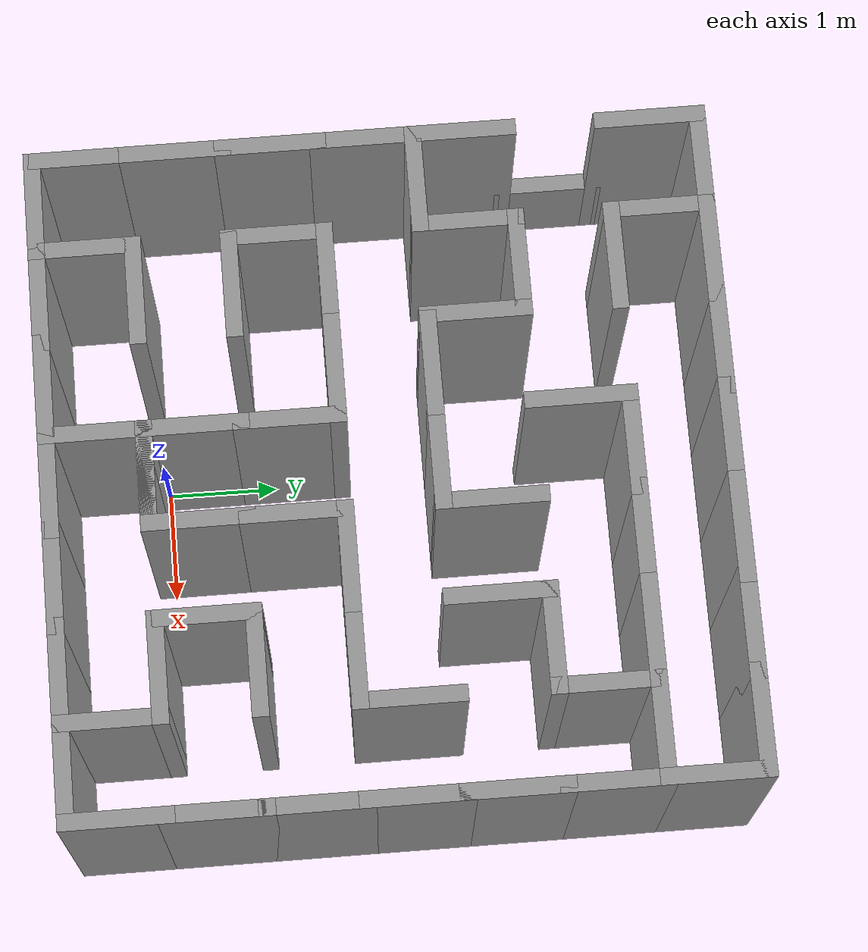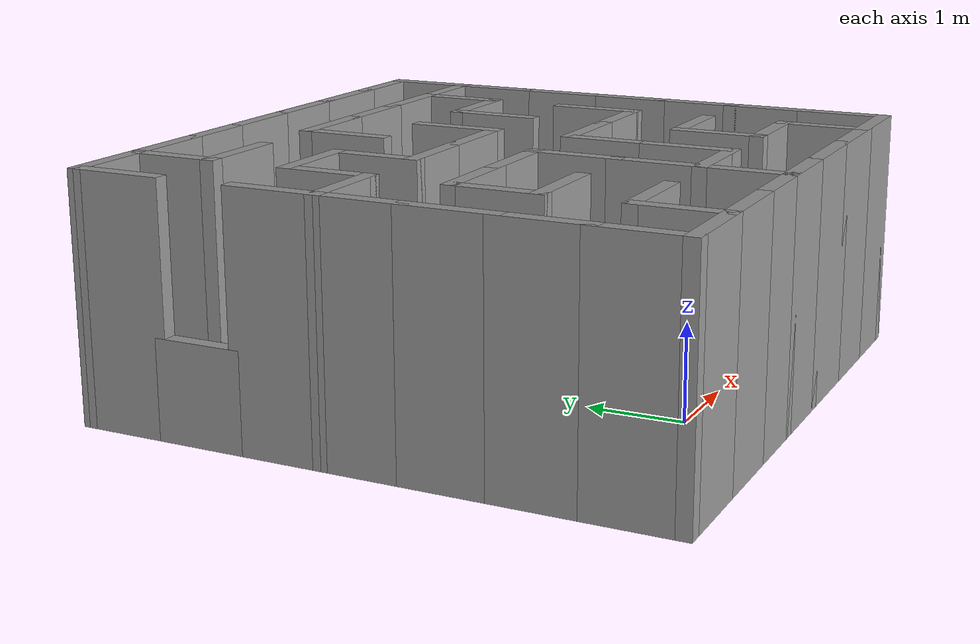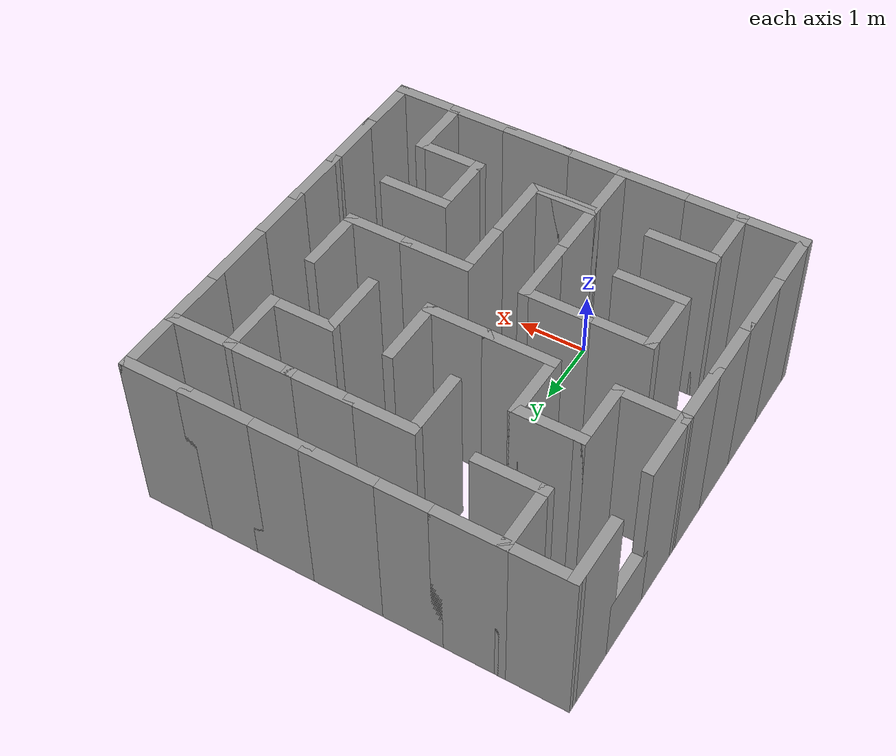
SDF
<?xml version='1.0'?>
<sdf version='1.7'>
  <model name='test_maze_v1'>
    <pose>0.480775 2.04426 0 0 -0 0</pose>
    <link name='Wall_235'>
      <collision name='Wall_235_Collision'>
        <geometry>
          <box>
            <size>1 0.15 2.5</size>
          </box>
        </geometry>
        <pose>0 0 1.25 0 -0 0</pose>
      </collision>
      <visual name='Wall_235_Visual'>
        <pose>0 0 1.25 0 -0 0</pose>
        <geometry>
          <box>
            <size>1 0.15 2.5</size>
          </box>
        </geometry>
        <material>
          <script>
            <uri>file://media/materials/scripts/gazebo.material</uri>
            <name>Gazebo/Grey</name>
          </script>
          <ambient>1 1 1 1</ambient>
        </material>
        <meta>
          <layer>0</layer>
        </meta>
      </visual>
      <pose>1e-05 -2.125 0 0 -0 0</pose>
    </link>
    <link name='Wall_236'>
      <collision name='Wall_236_Collision'>
        <geometry>
          <box>
            <size>1 0.15 2.5</size>
          </box>
        </geometry>
        <pose>0 0 1.25 0 -0 0</pose>
      </collision>
      <visual name='Wall_236_Visual'>
        <pose>0 0 1.25 0 -0 0</pose>
        <geometry>
          <box>
            <size>1 0.15 2.5</size>
          </box>
        </geometry>
        <material>
          <script>
            <uri>file://media/materials/scripts/gazebo.material</uri>
            <name>Gazebo/Grey</name>
          </script>
          <ambient>1 1 1 1</ambient>
        </material>
        <meta>
          <layer>0</layer>
        </meta>
      </visual>
      <pose>0.425009 -1.7 0 0 -0 1.5708</pose>
    </link>
    <link name='Wall_237'>
      <collision name='Wall_237_Collision'>
        <geometry>
          <box>
            <size>1 0.15 2.5</size>
          </box>
        </geometry>
        <pose>0 0 1.25 0 -0 0</pose>
      </collision>
      <visual name='Wall_237_Visual'>
        <pose>0 0 1.25 0 -0 0</pose>
        <geometry>
          <box>
            <size>1 0.15 2.5</size>
          </box>
        </geometry>
        <material>
          <script>
            <uri>file://media/materials/scripts/gazebo.material</uri>
            <name>Gazebo/Grey</name>
          </script>
          <ambient>1 1 1 1</ambient>
        </material>
        <meta>
          <layer>0</layer>
        </meta>
      </visual>
      <pose>0.425009 -0.85 0 0 -0 1.5708</pose>
    </link>
    <link name='Wall_238'>
      <collision name='Wall_238_Collision'>
        <geometry>
          <box>
            <size>1 0.15 2.5</size>
          </box>
        </geometry>
        <pose>0 0 1.25 0 -0 0</pose>
      </collision>
      <visual name='Wall_238_Visual'>
        <pose>0 0 1.25 0 -0 0</pose>
        <geometry>
          <box>
            <size>1 0.15 2.5</size>
          </box>
        </geometry>
        <material>
          <script>
            <uri>file://media/materials/scripts/gazebo.material</uri>
            <name>Gazebo/Grey</name>
          </script>
          <ambient>1 1 1 1</ambient>
        </material>
        <meta>
          <layer>0</layer>
        </meta>
      </visual>
      <pose>0.85001 -0.425 0 0 -0 0</pose>
    </link>
    <link name='Wall_239'>
      <collision name='Wall_239_Collision'>
        <geometry>
          <box>
            <size>1 0.15 2.5</size>
          </box>
        </geometry>
        <pose>0 0 1.25 0 -0 0</pose>
      </collision>
      <visual name='Wall_239_Visual'>
        <pose>0 0 1.25 0 -0 0</pose>
        <geometry>
          <box>
            <size>1 0.15 2.5</size>
          </box>
        </geometry>
        <material>
          <script>
            <uri>file://media/materials/scripts/gazebo.material</uri>
            <name>Gazebo/Grey</name>
          </script>
          <ambient>1 1 1 1</ambient>
        </material>
        <meta>
          <layer>0</layer>
        </meta>
      </visual>
      <pose>1.70001 -0.425 0 0 -0 0</pose>
    </link>
    <link name='Wall_240'>
      <collision name='Wall_240_Collision'>
        <geometry>
          <box>
            <size>1 0.15 2.5</size>
          </box>
        </geometry>
        <pose>0 0 1.25 0 -0 0</pose>
      </collision>
      <visual name='Wall_240_Visual'>
        <pose>0 0 1.25 0 -0 0</pose>
        <geometry>
          <box>
            <size>1 0.15 2.5</size>
          </box>
        </geometry>
        <material>
          <script>
            <uri>file://media/materials/scripts/gazebo.material</uri>
            <name>Gazebo/Grey</name>
          </script>
          <ambient>1 1 1 1</ambient>
        </material>
        <meta>
          <layer>0</layer>
        </meta>
      </visual>
      <pose>2.12501 0 0 0 -0 1.5708</pose>
    </link>
    <link name='Wall_242'>
      <collision name='Wall_242_Collision'>
        <geometry>
          <box>
            <size>1 0.15 2.5</size>
          </box>
        </geometry>
        <pose>0 0 1.25 0 -0 0</pose>
      </collision>
      <visual name='Wall_242_Visual'>
        <pose>0 0 1.25 0 -0 0</pose>
        <geometry>
          <box>
            <size>1 0.15 2.5</size>
          </box>
        </geometry>
        <material>
          <script>
            <uri>file://media/materials/scripts/gazebo.material</uri>
            <name>Gazebo/Grey</name>
          </script>
          <ambient>1 1 1 1</ambient>
        </material>
        <meta>
          <layer>0</layer>
        </meta>
      </visual>
      <pose>1e-05 -2.125 0 0 -0 3.14159</pose>
    </link>
    <link name='Wall_243'>
      <collision name='Wall_243_Collision'>
        <geometry>
          <box>
            <size>1 0.15 2.5</size>
          </box>
        </geometry>
        <pose>0 0 1.25 0 -0 0</pose>
      </collision>
      <visual name='Wall_243_Visual'>
        <pose>0 0 1.25 0 -0 0</pose>
        <geometry>
          <box>
            <size>1 0.15 2.5</size>
          </box>
        </geometry>
        <material>
          <script>
            <uri>file://media/materials/scripts/gazebo.material</uri>
            <name>Gazebo/Grey</name>
          </script>
          <ambient>1 1 1 1</ambient>
        </material>
        <meta>
          <layer>0</layer>
        </meta>
      </visual>
      <pose>-0.42499 -1.7 0 0 -0 1.5708</pose>
    </link>
    <link name='Wall_244'>
      <collision name='Wall_244_Collision'>
        <geometry>
          <box>
            <size>1 0.15 2.5</size>
          </box>
        </geometry>
        <pose>0 0 1.25 0 -0 0</pose>
      </collision>
      <visual name='Wall_244_Visual'>
        <pose>0 0 1.25 0 -0 0</pose>
        <geometry>
          <box>
            <size>1 0.15 2.5</size>
          </box>
        </geometry>
        <material>
          <script>
            <uri>file://media/materials/scripts/gazebo.material</uri>
            <name>Gazebo/Grey</name>
          </script>
          <ambient>1 1 1 1</ambient>
        </material>
        <meta>
          <layer>0</layer>
        </meta>
      </visual>
      <pose>-0.42499 -0.85 0 0 -0 1.5708</pose>
    </link>
    <link name='Wall_245'>
      <collision name='Wall_245_Collision'>
        <geometry>
          <box>
            <size>1 0.15 2.5</size>
          </box>
        </geometry>
        <pose>0 0 1.25 0 -0 0</pose>
      </collision>
      <visual name='Wall_245_Visual'>
        <pose>0 0 1.25 0 -0 0</pose>
        <geometry>
          <box>
            <size>1 0.15 2.5</size>
          </box>
        </geometry>
        <material>
          <script>
            <uri>file://media/materials/scripts/gazebo.material</uri>
            <name>Gazebo/Grey</name>
          </script>
          <ambient>1 1 1 1</ambient>
        </material>
        <meta>
          <layer>0</layer>
        </meta>
      </visual>
      <pose>-0.84999 -0.425 0 0 -0 3.14159</pose>
    </link>
    <link name='Wall_246'>
      <collision name='Wall_246_Collision'>
        <geometry>
          <box>
            <size>1 0.15 2.5</size>
          </box>
        </geometry>
        <pose>0 0 1.25 0 -0 0</pose>
      </collision>
      <visual name='Wall_246_Visual'>
        <pose>0 0 1.25 0 -0 0</pose>
        <geometry>
          <box>
            <size>1 0.15 2.5</size>
          </box>
        </geometry>
        <material>
          <script>
            <uri>file://media/materials/scripts/gazebo.material</uri>
            <name>Gazebo/Grey</name>
          </script>
          <ambient>1 1 1 1</ambient>
        </material>
        <meta>
          <layer>0</layer>
        </meta>
      </visual>
      <pose>-1.69999 -0.425 0 0 -0 3.14159</pose>
    </link>
    <link name='Wall_247'>
      <collision name='Wall_247_Collision'>
        <geometry>
          <box>
            <size>1 0.15 2.5</size>
          </box>
        </geometry>
        <pose>0 0 1.25 0 -0 0</pose>
      </collision>
      <visual name='Wall_247_Visual'>
        <pose>0 0 1.25 0 -0 0</pose>
        <geometry>
          <box>
            <size>1 0.15 2.5</size>
          </box>
        </geometry>
        <material>
          <script>
            <uri>file://media/materials/scripts/gazebo.material</uri>
            <name>Gazebo/Grey</name>
          </script>
          <ambient>1 1 1 1</ambient>
        </material>
        <meta>
          <layer>0</layer>
        </meta>
      </visual>
      <pose>-2.12499 -0.85 0 0 -0 -1.5708</pose>
    </link>
    <link name='Wall_248'>
      <collision name='Wall_248_Collision'>
        <geometry>
          <box>
            <size>1 0.15 2.5</size>
          </box>
        </geometry>
        <pose>0 0 1.25 0 -0 0</pose>
      </collision>
      <visual name='Wall_248_Visual'>
        <pose>0 0 1.25 0 -0 0</pose>
        <geometry>
          <box>
            <size>1 0.15 2.5</size>
          </box>
        </geometry>
        <material>
          <script>
            <uri>file://media/materials/scripts/gazebo.material</uri>
            <name>Gazebo/Grey</name>
          </script>
          <ambient>1 1 1 1</ambient>
        </material>
        <meta>
          <layer>0</layer>
        </meta>
      </visual>
      <pose>-1.69999 -1.275 0 0 -0 0</pose>
    </link>
    <link name='Wall_250'>
      <collision name='Wall_250_Collision'>
        <geometry>
          <box>
            <size>1 0.15 2.5</size>
          </box>
        </geometry>
        <pose>0 0 1.25 0 -0 0</pose>
      </collision>
      <visual name='Wall_250_Visual'>
        <pose>0 0 1.25 0 -0 0</pose>
        <geometry>
          <box>
            <size>1 0.15 2.5</size>
          </box>
        </geometry>
        <material>
          <script>
            <uri>file://media/materials/scripts/gazebo.material</uri>
            <name>Gazebo/Grey</name>
          </script>
          <ambient>1 1 1 1</ambient>
        </material>
        <meta>
          <layer>0</layer>
        </meta>
      </visual>
      <pose>-1.69999 -2.125 0 0 -0 3.14159</pose>
    </link>
    <link name='Wall_251'>
      <collision name='Wall_251_Collision'>
        <geometry>
          <box>
            <size>1 0.15 2.5</size>
          </box>
        </geometry>
        <pose>0 0 1.25 0 -0 0</pose>
      </collision>
      <visual name='Wall_251_Visual'>
        <pose>0 0 1.25 0 -0 0</pose>
        <geometry>
          <box>
            <size>1 0.15 2.5</size>
          </box>
        </geometry>
        <material>
          <script>
            <uri>file://media/materials/scripts/gazebo.material</uri>
            <name>Gazebo/Grey</name>
          </script>
          <ambient>1 1 1 1</ambient>
        </material>
        <meta>
          <layer>0</layer>
        </meta>
      </visual>
      <pose>-2.12499 -2.55 0 0 -0 -1.5708</pose>
    </link>
    <link name='Wall_252'>
      <collision name='Wall_252_Collision'>
        <geometry>
          <box>
            <size>1 0.15 2.5</size>
          </box>
        </geometry>
        <pose>0 0 1.25 0 -0 0</pose>
      </collision>
      <visual name='Wall_252_Visual'>
        <pose>0 0 1.25 0 -0 0</pose>
        <geometry>
          <box>
            <size>1 0.15 2.5</size>
          </box>
        </geometry>
        <material>
          <script>
            <uri>file://media/materials/scripts/gazebo.material</uri>
            <name>Gazebo/Grey</name>
          </script>
          <ambient>1 1 1 1</ambient>
        </material>
        <meta>
          <layer>0</layer>
        </meta>
      </visual>
      <pose>-1.69999 -2.975 0 0 -0 0</pose>
    </link>
    <link name='Wall_253'>
      <collision name='Wall_253_Collision'>
        <geometry>
          <box>
            <size>1 0.15 2.5</size>
          </box>
        </geometry>
        <pose>0 0 1.25 0 -0 0</pose>
      </collision>
      <visual name='Wall_253_Visual'>
        <pose>0 0 1.25 0 -0 0</pose>
        <geometry>
          <box>
            <size>1 0.15 2.5</size>
          </box>
        </geometry>
        <material>
          <script>
            <uri>file://media/materials/scripts/gazebo.material</uri>
            <name>Gazebo/Grey</name>
          </script>
          <ambient>1 1 1 1</ambient>
        </material>
        <meta>
          <layer>0</layer>
        </meta>
      </visual>
      <pose>-0.84999 -2.975 0 0 -0 0</pose>
    </link>
    <link name='Wall_254'>
      <collision name='Wall_254_Collision'>
        <geometry>
          <box>
            <size>1 0.15 2.5</size>
          </box>
        </geometry>
        <pose>0 0 1.25 0 -0 0</pose>
      </collision>
      <visual name='Wall_254_Visual'>
        <pose>0 0 1.25 0 -0 0</pose>
        <geometry>
          <box>
            <size>1 0.15 2.5</size>
          </box>
        </geometry>
        <material>
          <script>
            <uri>file://media/materials/scripts/gazebo.material</uri>
            <name>Gazebo/Grey</name>
          </script>
          <ambient>1 1 1 1</ambient>
        </material>
        <meta>
          <layer>0</layer>
        </meta>
      </visual>
      <pose>1e-05 -2.975 0 0 -0 0</pose>
    </link>
    <link name='Wall_255'>
      <collision name='Wall_255_Collision'>
        <geometry>
          <box>
            <size>1 0.15 2.5</size>
          </box>
        </geometry>
        <pose>0 0 1.25 0 -0 0</pose>
      </collision>
      <visual name='Wall_255_Visual'>
        <pose>0 0 1.25 0 -0 0</pose>
        <geometry>
          <box>
            <size>1 0.15 2.5</size>
          </box>
        </geometry>
        <material>
          <script>
            <uri>file://media/materials/scripts/gazebo.material</uri>
            <name>Gazebo/Grey</name>
          </script>
          <ambient>1 1 1 1</ambient>
        </material>
        <meta>
          <layer>0</layer>
        </meta>
      </visual>
      <pose>0.85001 -2.975 0 0 -0 0</pose>
    </link>
    <link name='Wall_256'>
      <collision name='Wall_256_Collision'>
        <geometry>
          <box>
            <size>1 0.15 2.5</size>
          </box>
        </geometry>
        <pose>0 0 1.25 0 -0 0</pose>
      </collision>
      <visual name='Wall_256_Visual'>
        <pose>0 0 1.25 0 -0 0</pose>
        <geometry>
          <box>
            <size>1 0.15 2.5</size>
          </box>
        </geometry>
        <material>
          <script>
            <uri>file://media/materials/scripts/gazebo.material</uri>
            <name>Gazebo/Grey</name>
          </script>
          <ambient>1 1 1 1</ambient>
        </material>
        <meta>
          <layer>0</layer>
        </meta>
      </visual>
      <pose>1.70001 -2.975 0 0 -0 0</pose>
    </link>
    <link name='Wall_257'>
      <collision name='Wall_257_Collision'>
        <geometry>
          <box>
            <size>1 0.15 2.5</size>
          </box>
        </geometry>
        <pose>0 0 1.25 0 -0 0</pose>
      </collision>
      <visual name='Wall_257_Visual'>
        <pose>0 0 1.25 0 -0 0</pose>
        <geometry>
          <box>
            <size>1 0.15 2.5</size>
          </box>
        </geometry>
        <material>
          <script>
            <uri>file://media/materials/scripts/gazebo.material</uri>
            <name>Gazebo/Grey</name>
          </script>
          <ambient>1 1 1 1</ambient>
        </material>
        <meta>
          <layer>0</layer>
        </meta>
      </visual>
      <pose>2.12501 -2.55 0 0 -0 1.5708</pose>
    </link>
    <link name='Wall_258'>
      <collision name='Wall_258_Collision'>
        <geometry>
          <box>
            <size>1 0.15 2.5</size>
          </box>
        </geometry>
        <pose>0 0 1.25 0 -0 0</pose>
      </collision>
      <visual name='Wall_258_Visual'>
        <pose>0 0 1.25 0 -0 0</pose>
        <geometry>
          <box>
            <size>1 0.15 2.5</size>
          </box>
        </geometry>
        <material>
          <script>
            <uri>file://media/materials/scripts/gazebo.material</uri>
            <name>Gazebo/Grey</name>
          </script>
          <ambient>1 1 1 1</ambient>
        </material>
        <meta>
          <layer>0</layer>
        </meta>
      </visual>
      <pose>1.70001 -2.125 0 0 -0 3.14159</pose>
    </link>
    <link name='Wall_259'>
      <collision name='Wall_259_Collision'>
        <geometry>
          <box>
            <size>1 0.15 2.5</size>
          </box>
        </geometry>
        <pose>0 0 1.25 0 -0 0</pose>
      </collision>
      <visual name='Wall_259_Visual'>
        <pose>0 0 1.25 0 -0 0</pose>
        <geometry>
          <box>
            <size>1 0.15 2.5</size>
          </box>
        </geometry>
        <material>
          <script>
            <uri>file://media/materials/scripts/gazebo.material</uri>
            <name>Gazebo/Grey</name>
          </script>
          <ambient>1 1 1 1</ambient>
        </material>
        <meta>
          <layer>0</layer>
        </meta>
      </visual>
      <pose>1.27501 -1.7 0 0 -0 1.5708</pose>
    </link>
    <link name='Wall_260'>
      <collision name='Wall_260_Collision'>
        <geometry>
          <box>
            <size>1 0.15 2.5</size>
          </box>
        </geometry>
        <pose>0 0 1.25 0 -0 0</pose>
      </collision>
      <visual name='Wall_260_Visual'>
        <pose>0 0 1.25 0 -0 0</pose>
        <geometry>
          <box>
            <size>1 0.15 2.5</size>
          </box>
        </geometry>
        <material>
          <script>
            <uri>file://media/materials/scripts/gazebo.material</uri>
            <name>Gazebo/Grey</name>
          </script>
          <ambient>1 1 1 1</ambient>
        </material>
        <meta>
          <layer>0</layer>
        </meta>
      </visual>
      <pose>1.70001 -1.275 0 0 -0 0</pose>
    </link>
    <link name='Wall_262'>
      <collision name='Wall_262_Collision'>
        <geometry>
          <box>
            <size>1 0.15 2.5</size>
          </box>
        </geometry>
        <pose>0 0 1.25 0 -0 0</pose>
      </collision>
      <visual name='Wall_262_Visual'>
        <pose>0 0 1.25 0 -0 0</pose>
        <geometry>
          <box>
            <size>1 0.15 2.5</size>
          </box>
        </geometry>
        <material>
          <script>
            <uri>file://media/materials/scripts/gazebo.material</uri>
            <name>Gazebo/Grey</name>
          </script>
          <ambient>1 1 1 1</ambient>
        </material>
        <meta>
          <layer>0</layer>
        </meta>
      </visual>
      <pose>2.55001 -2.975 0 0 -0 0</pose>
    </link>
    <link name='Wall_263'>
      <collision name='Wall_263_Collision'>
        <geometry>
          <box>
            <size>1 0.15 2.5</size>
          </box>
        </geometry>
        <pose>0 0 1.25 0 -0 0</pose>
      </collision>
      <visual name='Wall_263_Visual'>
        <pose>0 0 1.25 0 -0 0</pose>
        <geometry>
          <box>
            <size>1 0.15 2.5</size>
          </box>
        </geometry>
        <material>
          <script>
            <uri>file://media/materials/scripts/gazebo.material</uri>
            <name>Gazebo/Grey</name>
          </script>
          <ambient>1 1 1 1</ambient>
        </material>
        <meta>
          <layer>0</layer>
        </meta>
      </visual>
      <pose>2.97501 -2.55 0 0 -0 1.5708</pose>
    </link>
    <link name='Wall_264'>
      <collision name='Wall_264_Collision'>
        <geometry>
          <box>
            <size>1 0.15 2.5</size>
          </box>
        </geometry>
        <pose>0 0 1.25 0 -0 0</pose>
      </collision>
      <visual name='Wall_264_Visual'>
        <pose>0 0 1.25 0 -0 0</pose>
        <geometry>
          <box>
            <size>1 0.15 2.5</size>
          </box>
        </geometry>
        <material>
          <script>
            <uri>file://media/materials/scripts/gazebo.material</uri>
            <name>Gazebo/Grey</name>
          </script>
          <ambient>1 1 1 1</ambient>
        </material>
        <meta>
          <layer>0</layer>
        </meta>
      </visual>
      <pose>2.97501 -1.7 0 0 -0 1.5708</pose>
    </link>
    <link name='Wall_266'>
      <collision name='Wall_266_Collision'>
        <geometry>
          <box>
            <size>1 0.15 2.5</size>
          </box>
        </geometry>
        <pose>0 0 1.25 0 -0 0</pose>
      </collision>
      <visual name='Wall_266_Visual'>
        <pose>0 0 1.25 0 -0 0</pose>
        <geometry>
          <box>
            <size>1 0.15 2.5</size>
          </box>
        </geometry>
        <material>
          <script>
            <uri>file://media/materials/scripts/gazebo.material</uri>
            <name>Gazebo/Grey</name>
          </script>
          <ambient>1 1 1 1</ambient>
        </material>
        <meta>
          <layer>0</layer>
        </meta>
      </visual>
      <pose>-2.54999 -2.975 0 0 -0 3.14159</pose>
    </link>
    <link name='Wall_267'>
      <collision name='Wall_267_Collision'>
        <geometry>
          <box>
            <size>1 0.15 2.5</size>
          </box>
        </geometry>
        <pose>0 0 1.25 0 -0 0</pose>
      </collision>
      <visual name='Wall_267_Visual'>
        <pose>0 0 1.25 0 -0 0</pose>
        <geometry>
          <box>
            <size>1 0.15 2.5</size>
          </box>
        </geometry>
        <material>
          <script>
            <uri>file://media/materials/scripts/gazebo.material</uri>
            <name>Gazebo/Grey</name>
          </script>
          <ambient>1 1 1 1</ambient>
        </material>
        <meta>
          <layer>0</layer>
        </meta>
      </visual>
      <pose>-2.97499 -2.55 0 0 -0 1.5708</pose>
    </link>
    <link name='Wall_268'>
      <collision name='Wall_268_Collision'>
        <geometry>
          <box>
            <size>1 0.15 2.5</size>
          </box>
        </geometry>
        <pose>0 0 1.25 0 -0 0</pose>
      </collision>
      <visual name='Wall_268_Visual'>
        <pose>0 0 1.25 0 -0 0</pose>
        <geometry>
          <box>
            <size>1 0.15 2.5</size>
          </box>
        </geometry>
        <material>
          <script>
            <uri>file://media/materials/scripts/gazebo.material</uri>
            <name>Gazebo/Grey</name>
          </script>
          <ambient>1 1 1 1</ambient>
        </material>
        <meta>
          <layer>0</layer>
        </meta>
      </visual>
      <pose>-2.97499 -1.7 0 0 -0 1.5708</pose>
    </link>
    <link name='Wall_269'>
      <collision name='Wall_269_Collision'>
        <geometry>
          <box>
            <size>1 0.15 2.5</size>
          </box>
        </geometry>
        <pose>0 0 1.25 0 -0 0</pose>
      </collision>
      <visual name='Wall_269_Visual'>
        <pose>0 0 1.25 0 -0 0</pose>
        <geometry>
          <box>
            <size>1 0.15 2.5</size>
          </box>
        </geometry>
        <material>
          <script>
            <uri>file://media/materials/scripts/gazebo.material</uri>
            <name>Gazebo/Grey</name>
          </script>
          <ambient>1 1 1 1</ambient>
        </material>
        <meta>
          <layer>0</layer>
        </meta>
      </visual>
      <pose>-2.97499 -0.85 0 0 -0 1.5708</pose>
    </link>
    <link name='Wall_270'>
      <collision name='Wall_270_Collision'>
        <geometry>
          <box>
            <size>1 0.15 2.5</size>
          </box>
        </geometry>
        <pose>0 0 1.25 0 -0 0</pose>
      </collision>
      <visual name='Wall_270_Visual'>
        <pose>0 0 1.25 0 -0 0</pose>
        <geometry>
          <box>
            <size>1 0.15 2.5</size>
          </box>
        </geometry>
        <material>
          <script>
            <uri>file://media/materials/scripts/gazebo.material</uri>
            <name>Gazebo/Grey</name>
          </script>
          <ambient>1 1 1 1</ambient>
        </material>
        <meta>
          <layer>0</layer>
        </meta>
      </visual>
      <pose>-2.97499 0 0 0 -0 1.5708</pose>
    </link>
    <link name='Wall_271'>
      <collision name='Wall_271_Collision'>
        <geometry>
          <box>
            <size>1 0.15 2.5</size>
          </box>
        </geometry>
        <pose>0 0 1.25 0 -0 0</pose>
      </collision>
      <visual name='Wall_271_Visual'>
        <pose>0 0 1.25 0 -0 0</pose>
        <geometry>
          <box>
            <size>1 0.15 2.5</size>
          </box>
        </geometry>
        <material>
          <script>
            <uri>file://media/materials/scripts/gazebo.material</uri>
            <name>Gazebo/Grey</name>
          </script>
          <ambient>1 1 1 1</ambient>
        </material>
        <meta>
          <layer>0</layer>
        </meta>
      </visual>
      <pose>-2.54999 0.425 0 0 -0 0</pose>
    </link>
    <link name='Wall_274'>
      <collision name='Wall_274_Collision'>
        <geometry>
          <box>
            <size>1 0.15 2.5</size>
          </box>
        </geometry>
        <pose>0 0 1.25 0 -0 0</pose>
      </collision>
      <visual name='Wall_274_Visual'>
        <pose>0 0 1.25 0 -0 0</pose>
        <geometry>
          <box>
            <size>1 0.15 2.5</size>
          </box>
        </geometry>
        <material>
          <script>
            <uri>file://media/materials/scripts/gazebo.material</uri>
            <name>Gazebo/Grey</name>
          </script>
          <ambient>1 1 1 1</ambient>
        </material>
        <meta>
          <layer>0</layer>
        </meta>
      </visual>
      <pose>-0.84999 0.425 0 0 -0 0</pose>
    </link>
    <link name='Wall_275'>
      <collision name='Wall_275_Collision'>
        <geometry>
          <box>
            <size>1 0.15 2.5</size>
          </box>
        </geometry>
        <pose>0 0 1.25 0 -0 0</pose>
      </collision>
      <visual name='Wall_275_Visual'>
        <pose>0 0 1.25 0 -0 0</pose>
        <geometry>
          <box>
            <size>1 0.15 2.5</size>
          </box>
        </geometry>
        <material>
          <script>
            <uri>file://media/materials/scripts/gazebo.material</uri>
            <name>Gazebo/Grey</name>
          </script>
          <ambient>1 1 1 1</ambient>
        </material>
        <meta>
          <layer>0</layer>
        </meta>
      </visual>
      <pose>1e-05 0.425 0 0 -0 0</pose>
    </link>
    <link name='Wall_279'>
      <collision name='Wall_279_Collision'>
        <geometry>
          <box>
            <size>1 0.15 2.5</size>
          </box>
        </geometry>
        <pose>0 0 1.25 0 -0 0</pose>
      </collision>
      <visual name='Wall_279_Visual'>
        <pose>0 0 1.25 0 -0 0</pose>
        <geometry>
          <box>
            <size>1 0.15 2.5</size>
          </box>
        </geometry>
        <material>
          <script>
            <uri>file://media/materials/scripts/gazebo.material</uri>
            <name>Gazebo/Grey</name>
          </script>
          <ambient>1 1 1 1</ambient>
        </material>
        <meta>
          <layer>0</layer>
        </meta>
      </visual>
      <pose>-1.69999 1.275 0 0 -0 0</pose>
    </link>
    <link name='Wall_280'>
      <collision name='Wall_280_Collision'>
        <geometry>
          <box>
            <size>1 0.15 2.5</size>
          </box>
        </geometry>
        <pose>0 0 1.25 0 -0 0</pose>
      </collision>
      <visual name='Wall_280_Visual'>
        <pose>0 0 1.25 0 -0 0</pose>
        <geometry>
          <box>
            <size>1 0.15 2.5</size>
          </box>
        </geometry>
        <material>
          <script>
            <uri>file://media/materials/scripts/gazebo.material</uri>
            <name>Gazebo/Grey</name>
          </script>
          <ambient>1 1 1 1</ambient>
        </material>
        <meta>
          <layer>0</layer>
        </meta>
      </visual>
      <pose>-1.27499 0.85 0 0 -0 -1.5708</pose>
    </link>
    <link name='Wall_282'>
      <collision name='Wall_282_Collision'>
        <geometry>
          <box>
            <size>1 0.15 2.5</size>
          </box>
        </geometry>
        <pose>0 0 1.25 0 -0 0</pose>
      </collision>
      <visual name='Wall_282_Visual'>
        <pose>0 0 1.25 0 -0 0</pose>
        <geometry>
          <box>
            <size>1 0.15 2.5</size>
          </box>
        </geometry>
        <material>
          <script>
            <uri>file://media/materials/scripts/gazebo.material</uri>
            <name>Gazebo/Grey</name>
          </script>
          <ambient>1 1 1 1</ambient>
        </material>
        <meta>
          <layer>0</layer>
        </meta>
      </visual>
      <pose>-2.97488 0.849872 0 0 -0 1.57054</pose>
    </link>
    <link name='Wall_283'>
      <collision name='Wall_283_Collision'>
        <geometry>
          <box>
            <size>1 0.15 1</size>
          </box>
        </geometry>
        <pose>0 0 0.5 0 -0 0</pose>
      </collision>
      <visual name='Wall_283_Visual'>
        <pose>0 0 0.5 0 -0 0</pose>
        <geometry>
          <box>
            <size>1 0.15 1</size>
          </box>
        </geometry>
        <material>
          <script>
            <uri>file://media/materials/scripts/gazebo.material</uri>
            <name>Gazebo/Grey</name>
          </script>
          <ambient>1 1 1 1</ambient>
        </material>
        <meta>
          <layer>0</layer>
        </meta>
      </visual>
      <pose>-2.97478 1.69974 0 0 -0 1.5708</pose>
    </link>
    <link name='Wall_289'>
      <collision name='Wall_289_Collision'>
        <geometry>
          <box>
            <size>1 0.15 2.5</size>
          </box>
        </geometry>
        <pose>0 0 1.25 0 -0 0</pose>
      </collision>
      <visual name='Wall_289_Visual'>
        <pose>0 0 1.25 0 -0 0</pose>
        <geometry>
          <box>
            <size>1 0.15 2.5</size>
          </box>
        </geometry>
        <material>
          <script>
            <uri>file://media/materials/scripts/gazebo.material</uri>
            <name>Gazebo/Grey</name>
          </script>
          <ambient>1 1 1 1</ambient>
        </material>
        <meta>
          <layer>0</layer>
        </meta>
      </visual>
      <pose>0.425009 0.85 0 0 -0 1.5708</pose>
    </link>
    <link name='Wall_293'>
      <collision name='Wall_293_Collision'>
        <geometry>
          <box>
            <size>1 0.15 2.5</size>
          </box>
        </geometry>
        <pose>0 0 1.25 0 -0 0</pose>
      </collision>
      <visual name='Wall_293_Visual'>
        <pose>0 0 1.25 0 -0 0</pose>
        <geometry>
          <box>
            <size>1 0.15 2.5</size>
          </box>
        </geometry>
        <material>
          <script>
            <uri>file://media/materials/scripts/gazebo.material</uri>
            <name>Gazebo/Grey</name>
          </script>
          <ambient>1 1 1 1</ambient>
        </material>
        <meta>
          <layer>0</layer>
        </meta>
      </visual>
      <pose>1.70001 2.125 0 0 -0 0</pose>
    </link>
    <link name='Wall_294'>
      <collision name='Wall_294_Collision'>
        <geometry>
          <box>
            <size>1 0.15 2.5</size>
          </box>
        </geometry>
        <pose>0 0 1.25 0 -0 0</pose>
      </collision>
      <visual name='Wall_294_Visual'>
        <pose>0 0 1.25 0 -0 0</pose>
        <geometry>
          <box>
            <size>1 0.15 2.5</size>
          </box>
        </geometry>
        <material>
          <script>
            <uri>file://media/materials/scripts/gazebo.material</uri>
            <name>Gazebo/Grey</name>
          </script>
          <ambient>1 1 1 1</ambient>
        </material>
        <meta>
          <layer>0</layer>
        </meta>
      </visual>
      <pose>2.12501 1.7 0 0 -0 -1.5708</pose>
    </link>
    <link name='Wall_295'>
      <collision name='Wall_295_Collision'>
        <geometry>
          <box>
            <size>1 0.15 2.5</size>
          </box>
        </geometry>
        <pose>0 0 1.25 0 -0 0</pose>
      </collision>
      <visual name='Wall_295_Visual'>
        <pose>0 0 1.25 0 -0 0</pose>
        <geometry>
          <box>
            <size>1 0.15 2.5</size>
          </box>
        </geometry>
        <material>
          <script>
            <uri>file://media/materials/scripts/gazebo.material</uri>
            <name>Gazebo/Grey</name>
          </script>
          <ambient>1 1 1 1</ambient>
        </material>
        <meta>
          <layer>0</layer>
        </meta>
      </visual>
      <pose>1.70001 1.275 0 0 -0 3.14159</pose>
    </link>
    <link name='Wall_296'>
      <collision name='Wall_296_Collision'>
        <geometry>
          <box>
            <size>1 0.15 2.5</size>
          </box>
        </geometry>
        <pose>0 0 1.25 0 -0 0</pose>
      </collision>
      <visual name='Wall_296_Visual'>
        <pose>0 0 1.25 0 -0 0</pose>
        <geometry>
          <box>
            <size>1 0.15 2.5</size>
          </box>
        </geometry>
        <material>
          <script>
            <uri>file://media/materials/scripts/gazebo.material</uri>
            <name>Gazebo/Grey</name>
          </script>
          <ambient>1 1 1 1</ambient>
        </material>
        <meta>
          <layer>0</layer>
        </meta>
      </visual>
      <pose>1.27501 0.85 0 0 -0 -1.5708</pose>
    </link>
    <link name='Wall_300'>
      <collision name='Wall_300_Collision'>
        <geometry>
          <box>
            <size>1 0.15 2.5</size>
          </box>
        </geometry>
        <pose>0 0 1.25 0 -0 0</pose>
      </collision>
      <visual name='Wall_300_Visual'>
        <pose>0 0 1.25 0 -0 0</pose>
        <geometry>
          <box>
            <size>1 0.15 2.5</size>
          </box>
        </geometry>
        <material>
          <script>
            <uri>file://media/materials/scripts/gazebo.material</uri>
            <name>Gazebo/Grey</name>
          </script>
          <ambient>1 1 1 1</ambient>
        </material>
        <meta>
          <layer>0</layer>
        </meta>
      </visual>
      <pose>2.55001 2.125 0 0 -0 0</pose>
    </link>
    <link name='Wall_301'>
      <collision name='Wall_301_Collision'>
        <geometry>
          <box>
            <size>1 0.15 2.5</size>
          </box>
        </geometry>
        <pose>0 0 1.25 0 -0 0</pose>
      </collision>
      <visual name='Wall_301_Visual'>
        <pose>0 0 1.25 0 -0 0</pose>
        <geometry>
          <box>
            <size>1 0.15 2.5</size>
          </box>
        </geometry>
        <material>
          <script>
            <uri>file://media/materials/scripts/gazebo.material</uri>
            <name>Gazebo/Grey</name>
          </script>
          <ambient>1 1 1 1</ambient>
        </material>
        <meta>
          <layer>0</layer>
        </meta>
      </visual>
      <pose>2.97501 1.7 0 0 -0 -1.5708</pose>
    </link>
    <link name='Wall_302'>
      <collision name='Wall_302_Collision'>
        <geometry>
          <box>
            <size>1 0.15 2.5</size>
          </box>
        </geometry>
        <pose>0 0 1.25 0 -0 0</pose>
      </collision>
      <visual name='Wall_302_Visual'>
        <pose>0 0 1.25 0 -0 0</pose>
        <geometry>
          <box>
            <size>1 0.15 2.5</size>
          </box>
        </geometry>
        <material>
          <script>
            <uri>file://media/materials/scripts/gazebo.material</uri>
            <name>Gazebo/Grey</name>
          </script>
          <ambient>1 1 1 1</ambient>
        </material>
        <meta>
          <layer>0</layer>
        </meta>
      </visual>
      <pose>2.97501 0.85 0 0 -0 -1.5708</pose>
    </link>
    <link name='Wall_305'>
      <collision name='Wall_305_Collision'>
        <geometry>
          <box>
            <size>1 0.15 2.5</size>
          </box>
        </geometry>
        <pose>0 0 1.25 0 -0 0</pose>
      </collision>
      <visual name='Wall_305_Visual'>
        <pose>0 0 1.25 0 -0 0</pose>
        <geometry>
          <box>
            <size>1 0.15 2.5</size>
          </box>
        </geometry>
        <material>
          <script>
            <uri>file://media/materials/scripts/gazebo.material</uri>
            <name>Gazebo/Grey</name>
          </script>
          <ambient>1 1 1 1</ambient>
        </material>
        <meta>
          <layer>0</layer>
        </meta>
      </visual>
      <pose>2.97501 0 0 0 -0 -1.5708</pose>
    </link>
    <link name='Wall_306'>
      <collision name='Wall_306_Collision'>
        <geometry>
          <box>
            <size>1 0.15 2.5</size>
          </box>
        </geometry>
        <pose>0 0 1.25 0 -0 0</pose>
      </collision>
      <visual name='Wall_306_Visual'>
        <pose>0 0 1.25 0 -0 0</pose>
        <geometry>
          <box>
            <size>1 0.15 2.5</size>
          </box>
        </geometry>
        <material>
          <script>
            <uri>file://media/materials/scripts/gazebo.material</uri>
            <name>Gazebo/Grey</name>
          </script>
          <ambient>1 1 1 1</ambient>
        </material>
        <meta>
          <layer>0</layer>
        </meta>
      </visual>
      <pose>2.97501 -0.85 0 0 -0 -1.5708</pose>
    </link>
    <link name='Wall_310'>
      <collision name='Wall_310_Collision'>
        <geometry>
          <box>
            <size>1 0.15 2.5</size>
          </box>
        </geometry>
        <pose>0 0 1.25 0 -0 0</pose>
      </collision>
      <visual name='Wall_310_Visual'>
        <pose>0 0 1.25 0 -0 0</pose>
        <geometry>
          <box>
            <size>1 0.15 2.5</size>
          </box>
        </geometry>
        <material>
          <script>
            <uri>file://media/materials/scripts/gazebo.material</uri>
            <name>Gazebo/Grey</name>
          </script>
          <ambient>1 1 1 1</ambient>
        </material>
        <meta>
          <layer>0</layer>
        </meta>
      </visual>
      <pose>-2.97488 2.54987 0 0 -0 1.57105</pose>
    </link>
    <link name='Wall_311'>
      <collision name='Wall_311_Collision'>
        <geometry>
          <box>
            <size>1 0.15 2.5</size>
          </box>
        </geometry>
        <pose>0 0 1.25 0 -0 0</pose>
      </collision>
      <visual name='Wall_311_Visual'>
        <pose>0 0 1.25 0 -0 0</pose>
        <geometry>
          <box>
            <size>1 0.15 2.5</size>
          </box>
        </geometry>
        <material>
          <script>
            <uri>file://media/materials/scripts/gazebo.material</uri>
            <name>Gazebo/Grey</name>
          </script>
          <ambient>1 1 1 1</ambient>
        </material>
        <meta>
          <layer>0</layer>
        </meta>
      </visual>
      <pose>-2.54999 2.975 0 0 -0 0</pose>
    </link>
    <link name='Wall_312'>
      <collision name='Wall_312_Collision'>
        <geometry>
          <box>
            <size>1 0.15 2.5</size>
          </box>
        </geometry>
        <pose>0 0 1.25 0 -0 0</pose>
      </collision>
      <visual name='Wall_312_Visual'>
        <pose>0 0 1.25 0 -0 0</pose>
        <geometry>
          <box>
            <size>1 0.15 2.5</size>
          </box>
        </geometry>
        <material>
          <script>
            <uri>file://media/materials/scripts/gazebo.material</uri>
            <name>Gazebo/Grey</name>
          </script>
          <ambient>1 1 1 1</ambient>
        </material>
        <meta>
          <layer>0</layer>
        </meta>
      </visual>
      <pose>-1.69999 2.975 0 0 -0 0</pose>
    </link>
    <link name='Wall_313'>
      <collision name='Wall_313_Collision'>
        <geometry>
          <box>
            <size>1 0.15 2.5</size>
          </box>
        </geometry>
        <pose>0 0 1.25 0 -0 0</pose>
      </collision>
      <visual name='Wall_313_Visual'>
        <pose>0 0 1.25 0 -0 0</pose>
        <geometry>
          <box>
            <size>1 0.15 2.5</size>
          </box>
        </geometry>
        <material>
          <script>
            <uri>file://media/materials/scripts/gazebo.material</uri>
            <name>Gazebo/Grey</name>
          </script>
          <ambient>1 1 1 1</ambient>
        </material>
        <meta>
          <layer>0</layer>
        </meta>
      </visual>
      <pose>-0.84999 2.975 0 0 -0 0</pose>
    </link>
    <link name='Wall_314'>
      <collision name='Wall_314_Collision'>
        <geometry>
          <box>
            <size>1 0.15 2.5</size>
          </box>
        </geometry>
        <pose>0 0 1.25 0 -0 0</pose>
      </collision>
      <visual name='Wall_314_Visual'>
        <pose>0 0 1.25 0 -0 0</pose>
        <geometry>
          <box>
            <size>1 0.15 2.5</size>
          </box>
        </geometry>
        <material>
          <script>
            <uri>file://media/materials/scripts/gazebo.material</uri>
            <name>Gazebo/Grey</name>
          </script>
          <ambient>1 1 1 1</ambient>
        </material>
        <meta>
          <layer>0</layer>
        </meta>
      </visual>
      <pose>1e-05 2.975 0 0 -0 0</pose>
    </link>
    <link name='Wall_315'>
      <collision name='Wall_315_Collision'>
        <geometry>
          <box>
            <size>1 0.15 2.5</size>
          </box>
        </geometry>
        <pose>0 0 1.25 0 -0 0</pose>
      </collision>
      <visual name='Wall_315_Visual'>
        <pose>0 0 1.25 0 -0 0</pose>
        <geometry>
          <box>
            <size>1 0.15 2.5</size>
          </box>
        </geometry>
        <material>
          <script>
            <uri>file://media/materials/scripts/gazebo.material</uri>
            <name>Gazebo/Grey</name>
          </script>
          <ambient>1 1 1 1</ambient>
        </material>
        <meta>
          <layer>0</layer>
        </meta>
      </visual>
      <pose>0.85001 2.975 0 0 -0 0</pose>
    </link>
    <link name='Wall_316'>
      <collision name='Wall_316_Collision'>
        <geometry>
          <box>
            <size>1 0.15 2.5</size>
          </box>
        </geometry>
        <pose>0 0 1.25 0 -0 0</pose>
      </collision>
      <visual name='Wall_316_Visual'>
        <pose>0 0 1.25 0 -0 0</pose>
        <geometry>
          <box>
            <size>1 0.15 2.5</size>
          </box>
        </geometry>
        <material>
          <script>
            <uri>file://media/materials/scripts/gazebo.material</uri>
            <name>Gazebo/Grey</name>
          </script>
          <ambient>1 1 1 1</ambient>
        </material>
        <meta>
          <layer>0</layer>
        </meta>
      </visual>
      <pose>1.70001 2.975 0 0 -0 0</pose>
    </link>
    <link name='Wall_317'>
      <collision name='Wall_317_Collision'>
        <geometry>
          <box>
            <size>1 0.15 2.5</size>
          </box>
        </geometry>
        <pose>0 0 1.25 0 -0 0</pose>
      </collision>
      <visual name='Wall_317_Visual'>
        <pose>0 0 1.25 0 -0 0</pose>
        <geometry>
          <box>
            <size>1 0.15 2.5</size>
          </box>
        </geometry>
        <material>
          <script>
            <uri>file://media/materials/scripts/gazebo.material</uri>
            <name>Gazebo/Grey</name>
          </script>
          <ambient>1 1 1 1</ambient>
        </material>
        <meta>
          <layer>0</layer>
        </meta>
      </visual>
      <pose>2.55001 2.975 0 0 -0 0</pose>
    </link>
    <link name='Wall_318'>
      <collision name='Wall_318_Collision'>
        <geometry>
          <box>
            <size>1 0.15 2.5</size>
          </box>
        </geometry>
        <pose>0 0 1.25 0 -0 0</pose>
      </collision>
      <visual name='Wall_318_Visual'>
        <pose>0 0 1.25 0 -0 0</pose>
        <geometry>
          <box>
            <size>1 0.15 2.5</size>
          </box>
        </geometry>
        <material>
          <script>
            <uri>file://media/materials/scripts/gazebo.material</uri>
            <name>Gazebo/Grey</name>
          </script>
          <ambient>1 1 1 1</ambient>
        </material>
        <meta>
          <layer>0</layer>
        </meta>
      </visual>
      <pose>2.97501 2.55 0 0 -0 -1.5708</pose>
    </link>
    <link name='Wall_323'>
      <collision name='Wall_323_Collision'>
        <geometry>
          <box>
            <size>1 0.15 2.5</size>
          </box>
        </geometry>
        <pose>0 0 1.25 0 -0 0</pose>
      </collision>
      <visual name='Wall_323_Visual'>
        <pose>0 0 1.25 0 -0 0</pose>
        <geometry>
          <box>
            <size>1 0.15 2.5</size>
          </box>
        </geometry>
        <material>
          <script>
            <uri>file://media/materials/scripts/gazebo.material</uri>
            <name>Gazebo/Grey</name>
          </script>
          <ambient>1 1 1 1</ambient>
        </material>
        <meta>
          <layer>0</layer>
        </meta>
      </visual>
      <pose>0.85001 2.125 0 0 -0 0</pose>
    </link>
    <link name='Wall_325'>
      <collision name='Wall_325_Collision'>
        <geometry>
          <box>
            <size>1 0.15 2.5</size>
          </box>
        </geometry>
        <pose>0 0 1.25 0 -0 0</pose>
      </collision>
      <visual name='Wall_325_Visual'>
        <pose>0 0 1.25 0 -0 0</pose>
        <geometry>
          <box>
            <size>1 0.15 2.5</size>
          </box>
        </geometry>
        <material>
          <script>
            <uri>file://media/materials/scripts/gazebo.material</uri>
            <name>Gazebo/Grey</name>
          </script>
          <ambient>1 1 1 1</ambient>
        </material>
        <meta>
          <layer>0</layer>
        </meta>
      </visual>
      <pose>1e-05 2.125 0 0 -0 3.14159</pose>
    </link>
    <link name='Wall_327'>
      <collision name='Wall_327_Collision'>
        <geometry>
          <box>
            <size>1 0.15 2.5</size>
          </box>
        </geometry>
        <pose>0 0 1.25 0 -0 0</pose>
      </collision>
      <visual name='Wall_327_Visual'>
        <pose>0 0 1.25 0 -0 0</pose>
        <geometry>
          <box>
            <size>1 0.15 2.5</size>
          </box>
        </geometry>
        <material>
          <script>
            <uri>file://media/materials/scripts/gazebo.material</uri>
            <name>Gazebo/Grey</name>
          </script>
          <ambient>1 1 1 1</ambient>
        </material>
        <meta>
          <layer>0</layer>
        </meta>
      </visual>
      <pose>-1.69999 2.125 0 0 -0 3.14159</pose>
    </link>
    <link name='Wall_329'>
      <collision name='Wall_329_Collision'>
        <geometry>
          <box>
            <size>1 0.15 2.5</size>
          </box>
        </geometry>
        <pose>0 0 1.25 0 -0 0</pose>
      </collision>
      <visual name='Wall_329_Visual'>
        <pose>0 0 1.25 0 -0 0</pose>
        <geometry>
          <box>
            <size>1 0.15 2.5</size>
          </box>
        </geometry>
        <material>
          <script>
            <uri>file://media/materials/scripts/gazebo.material</uri>
            <name>Gazebo/Grey</name>
          </script>
          <ambient>1 1 1 1</ambient>
        </material>
        <meta>
          <layer>0</layer>
        </meta>
      </visual>
      <pose>-0.42499 1.7 0 0 -0 -1.5708</pose>
    </link>
    <link name='Wall_331'>
      <collision name='Wall_331_Collision'>
        <geometry>
          <box>
            <size>1 0.15 2.5</size>
          </box>
        </geometry>
        <pose>0 0 1.25 0 -0 0</pose>
      </collision>
      <visual name='Wall_331_Visual'>
        <pose>0 0 1.25 0 -0 0</pose>
        <geometry>
          <box>
            <size>1 0.15 2.5</size>
          </box>
        </geometry>
        <material>
          <script>
            <uri>file://media/materials/scripts/gazebo.material</uri>
            <name>Gazebo/Grey</name>
          </script>
          <ambient>1 1 1 1</ambient>
        </material>
        <meta>
          <layer>0</layer>
        </meta>
      </visual>
      <pose>-2.12499 2.55 0 0 -0 1.5708</pose>
    </link>
    <link name='Wall_333'>
      <collision name='Wall_333_Collision'>
        <geometry>
          <box>
            <size>1 0.15 2.5</size>
          </box>
        </geometry>
        <pose>0 0 1.25 0 -0 0</pose>
      </collision>
      <visual name='Wall_333_Visual'>
        <pose>0 0 1.25 0 -0 0</pose>
        <geometry>
          <box>
            <size>1 0.15 2.5</size>
          </box>
        </geometry>
        <material>
          <script>
            <uri>file://media/materials/scripts/gazebo.material</uri>
            <name>Gazebo/Grey</name>
          </script>
          <ambient>1 1 1 1</ambient>
        </material>
        <meta>
          <layer>0</layer>
        </meta>
      </visual>
      <pose>-0.42499 -2.55 0 0 -0 -1.5708</pose>
    </link>
    <link name='Wall_335'>
      <collision name='Wall_335_Collision'>
        <geometry>
          <box>
            <size>1 0.15 2.5</size>
          </box>
        </geometry>
        <pose>0 0 1.25 0 -0 0</pose>
      </collision>
      <visual name='Wall_335_Visual'>
        <pose>0 0 1.25 0 -0 0</pose>
        <geometry>
          <box>
            <size>1 0.15 2.5</size>
          </box>
        </geometry>
        <material>
          <script>
            <uri>file://media/materials/scripts/gazebo.material</uri>
            <name>Gazebo/Grey</name>
          </script>
          <ambient>1 1 1 1</ambient>
        </material>
        <meta>
          <layer>0</layer>
        </meta>
      </visual>
      <pose>-2.12499 0.85 0 0 -0 1.5708</pose>
    </link>
    <static>1</static>
  </model>
</sdf>
